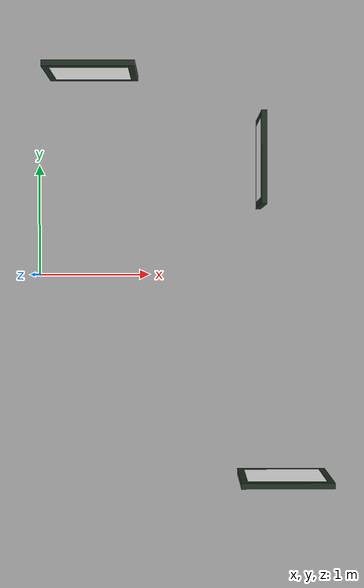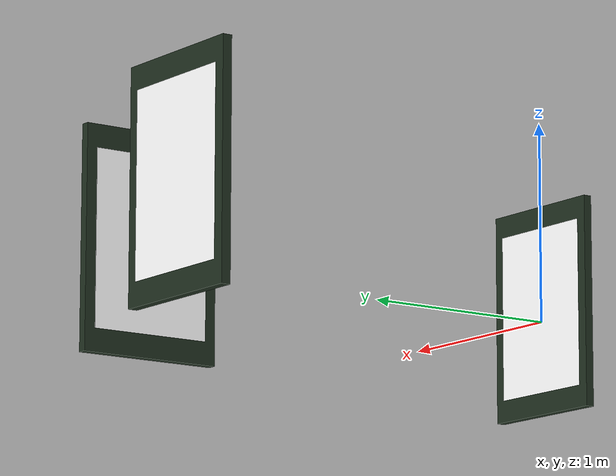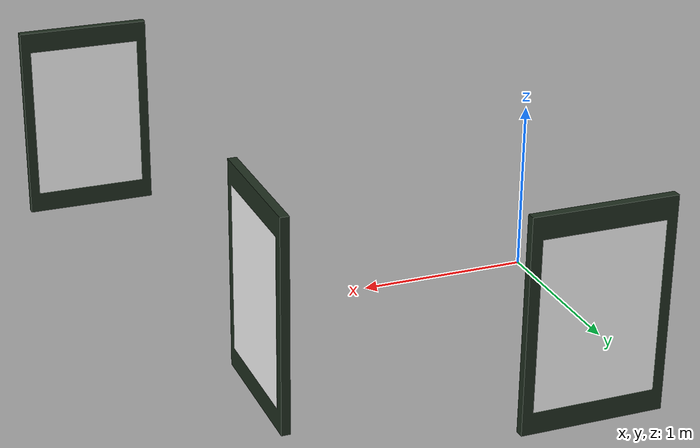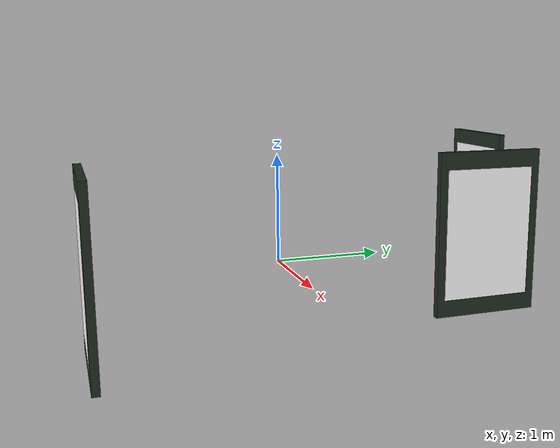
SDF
<?xml version="1.0"?>
<sdf version="1.8">
  <model name="plot_markers">
    <static>true</static>

    <link name="plot_01_marker">
      <!-- Right side of the central area; front points toward world -Y. -->
      <pose>2.2 -1.8 0.6 0 0 1.570796</pose>
      <collision name="board_collision">
        <geometry><box><size>0.05 0.8 1.2</size></box></geometry>
      </collision>
      <visual name="board_visual">
        <geometry><box><size>0.05 0.8 1.2</size></box></geometry>
        <material>
          <ambient>0.12 0.18 0.12 1</ambient>
          <diffuse>0.12 0.18 0.12 1</diffuse>
        </material>
      </visual>
      <visual name="qr_visual">
        <!-- Local X -> world -Y, local Y -> world Z, normal -> world -X. -->
        <pose>-0.026 0 0 1.570796 0 -1.570796</pose>
        <geometry><plane><normal>0 0 1</normal><size>0.68 0.95</size></plane></geometry>
        <material>
          <ambient>1 1 1 1</ambient>
          <diffuse>1 1 1 1</diffuse>
          <pbr><metal><albedo_map>model://plot_marker/materials/textures/plot-01.png</albedo_map></metal></pbr>
        </material>
      </visual>
      <visual name="qr_visual_back">
        <!-- Upright on the opposite face; local X follows the viewer's right. -->
        <pose>0.026 0 0 1.570796 0 1.570796</pose>
        <geometry><plane><normal>0 0 1</normal><size>0.68 0.95</size></plane></geometry>
        <material>
          <ambient>1 1 1 1</ambient>
          <diffuse>1 1 1 1</diffuse>
          <pbr><metal><albedo_map>model://plot_marker/materials/textures/plot-01.png</albedo_map></metal></pbr>
        </material>
      </visual>
    </link>

    <link name="plot_02_marker">
      <!-- Left side of the central area; front points toward world +Y. -->
      <pose>0.5 1.8 0.6 0 0 -1.570796</pose>
      <collision name="board_collision">
        <geometry><box><size>0.05 0.8 1.2</size></box></geometry>
      </collision>
      <visual name="board_visual">
        <geometry><box><size>0.05 0.8 1.2</size></box></geometry>
        <material>
          <ambient>0.12 0.18 0.12 1</ambient>
          <diffuse>0.12 0.18 0.12 1</diffuse>
        </material>
      </visual>
      <visual name="qr_visual">
        <pose>-0.026 0 0 1.570796 0 -1.570796</pose>
        <geometry><plane><normal>0 0 1</normal><size>0.68 0.95</size></plane></geometry>
        <material>
          <ambient>1 1 1 1</ambient>
          <diffuse>1 1 1 1</diffuse>
          <pbr><metal><albedo_map>model://plot_marker/materials/textures/plot-02.png</albedo_map></metal></pbr>
        </material>
      </visual>
      <visual name="qr_visual_back">
        <pose>0.026 0 0 1.570796 0 1.570796</pose>
        <geometry><plane><normal>0 0 1</normal><size>0.68 0.95</size></plane></geometry>
        <material>
          <ambient>1 1 1 1</ambient>
          <diffuse>1 1 1 1</diffuse>
          <pbr><metal><albedo_map>model://plot_marker/materials/textures/plot-02.png</albedo_map></metal></pbr>
        </material>
      </visual>
    </link>

    <link name="plot_03_marker">
      <!-- Original approved position; front points toward world -X. -->
      <pose>2 1 0.6 0 0 0</pose>
      <collision name="board_collision">
        <geometry><box><size>0.05 0.8 1.2</size></box></geometry>
      </collision>
      <visual name="board_visual">
        <geometry><box><size>0.05 0.8 1.2</size></box></geometry>
        <material>
          <ambient>0.12 0.18 0.12 1</ambient>
          <diffuse>0.12 0.18 0.12 1</diffuse>
        </material>
      </visual>
      <visual name="qr_visual">
        <pose>-0.026 0 0 1.570796 0 -1.570796</pose>
        <geometry><plane><normal>0 0 1</normal><size>0.68 0.95</size></plane></geometry>
        <material>
          <ambient>1 1 1 1</ambient>
          <diffuse>1 1 1 1</diffuse>
          <pbr><metal><albedo_map>model://plot_marker/materials/textures/plot-03.png</albedo_map></metal></pbr>
        </material>
      </visual>
      <visual name="qr_visual_back">
        <pose>0.026 0 0 1.570796 0 1.570796</pose>
        <geometry><plane><normal>0 0 1</normal><size>0.68 0.95</size></plane></geometry>
        <material>
          <ambient>1 1 1 1</ambient>
          <diffuse>1 1 1 1</diffuse>
          <pbr><metal><albedo_map>model://plot_marker/materials/textures/plot-03.png</albedo_map></metal></pbr>
        </material>
      </visual>
    </link>
  </model>
</sdf>
